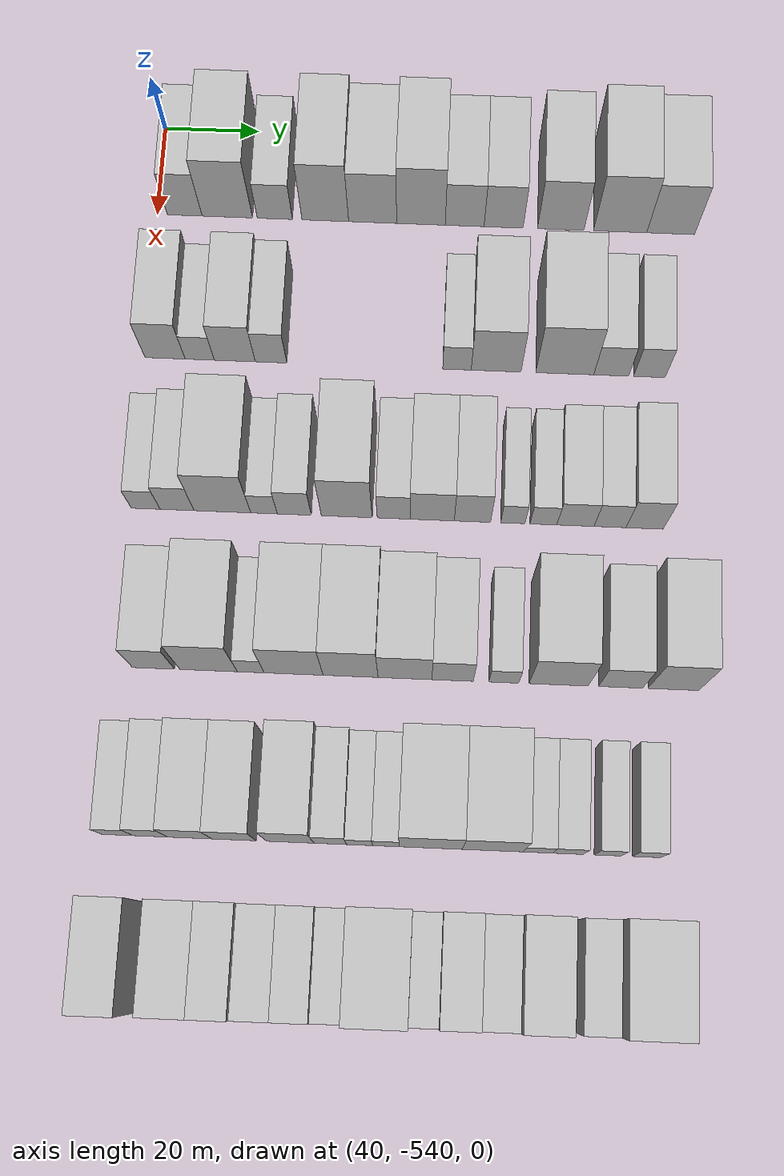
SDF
<sdf version="1.6">
 <world name="default">
  <model name="building_1">
   <static>1</static>
   <pose>50.0000 -534.3650 0 0.000000 0.000000 0.000000</pose>
   <link name="link">
    <pose>0 0 9.00 0 0 0</pose>
    <collision name="collision"><geometry><box><size>20.0000 7.2701 18.0000</size></box></geometry></collision>
    <visual name="visual">
     <cast_shadows>0</cast_shadows>
     <geometry><box><size>20.0000 7.2701 18.0000</size></box></geometry>
     <material>
      <script>
       <uri>model://HANNAS_wall/materials/scripts</uri>
       <uri>model://HANNAS_wall/materials/textures</uri>
       <name>vrc/HANNAS_wall</name>
      </script>
     </material>
    </visual>
   </link>
  </model>
  <model name="building_2">
   <static>1</static>
   <pose>50.0000 -525.4408 0 0.000000 0.000000 0.000000</pose>
   <link name="link">
    <pose>0 0 12.00 0 0 0</pose>
    <collision name="collision"><geometry><box><size>20.0000 10.5782 24.0000</size></box></geometry></collision>
    <visual name="visual">
     <cast_shadows>0</cast_shadows>
     <geometry><box><size>20.0000 10.5782 24.0000</size></box></geometry>
     <material>
      <script>
       <uri>model://HANNAS_wall/materials/scripts</uri>
       <uri>model://HANNAS_wall/materials/textures</uri>
       <name>vrc/HANNAS_wall</name>
      </script>
     </material>
    </visual>
   </link>
  </model>
  <model name="building_3">
   <static>1</static>
   <pose>50.0000 -515.4774 0 0.000000 0.000000 0.000000</pose>
   <link name="link">
    <pose>0 0 7.50 0 0 0</pose>
    <collision name="collision"><geometry><box><size>20.0000 7.3486 15.0000</size></box></geometry></collision>
    <visual name="visual">
     <cast_shadows>0</cast_shadows>
     <geometry><box><size>20.0000 7.3486 15.0000</size></box></geometry>
     <material>
      <script>
       <uri>model://HANNAS_wall/materials/scripts</uri>
       <uri>model://HANNAS_wall/materials/textures</uri>
       <name>vrc/HANNAS_wall</name>
      </script>
     </material>
    </visual>
   </link>
  </model>
  <model name="building_4">
   <static>1</static>
   <pose>50.0000 -504.9186 0 0.000000 0.000000 0.000000</pose>
   <link name="link">
    <pose>0 0 12.00 0 0 0</pose>
    <collision name="collision"><geometry><box><size>20.0000 9.7689 24.0000</size></box></geometry></collision>
    <visual name="visual">
     <cast_shadows>0</cast_shadows>
     <geometry><box><size>20.0000 9.7689 24.0000</size></box></geometry>
     <material>
      <script>
       <uri>model://HANNAS_wall/materials/scripts</uri>
       <uri>model://HANNAS_wall/materials/textures</uri>
       <name>vrc/HANNAS_wall</name>
      </script>
     </material>
    </visual>
   </link>
  </model>
  <model name="building_5">
   <static>1</static>
   <pose>50.0000 -495.0016 0 0.000000 0.000000 0.000000</pose>
   <link name="link">
    <pose>0 0 10.50 0 0 0</pose>
    <collision name="collision"><geometry><box><size>20.0000 10.0650 21.0000</size></box></geometry></collision>
    <visual name="visual">
     <cast_shadows>0</cast_shadows>
     <geometry><box><size>20.0000 10.0650 21.0000</size></box></geometry>
     <material>
      <script>
       <uri>model://HANNAS_wall/materials/scripts</uri>
       <uri>model://HANNAS_wall/materials/textures</uri>
       <name>vrc/HANNAS_wall</name>
      </script>
     </material>
    </visual>
   </link>
  </model>
  <model name="building_6">
   <static>1</static>
   <pose>50.0000 -484.9039 0 0.000000 0.000000 0.000000</pose>
   <link name="link">
    <pose>0 0 12.00 0 0 0</pose>
    <collision name="collision"><geometry><box><size>20.0000 10.1304 24.0000</size></box></geometry></collision>
    <visual name="visual">
     <cast_shadows>0</cast_shadows>
     <geometry><box><size>20.0000 10.1304 24.0000</size></box></geometry>
     <material>
      <script>
       <uri>model://HANNAS_wall/materials/scripts</uri>
       <uri>model://HANNAS_wall/materials/textures</uri>
       <name>vrc/HANNAS_wall</name>
      </script>
     </material>
    </visual>
   </link>
  </model>
  <model name="building_7">
   <static>1</static>
   <pose>50.0000 -475.7787 0 0.000000 0.000000 0.000000</pose>
   <link name="link">
    <pose>0 0 9.00 0 0 0</pose>
    <collision name="collision"><geometry><box><size>20.0000 8.1200 18.0000</size></box></geometry></collision>
    <visual name="visual">
     <cast_shadows>0</cast_shadows>
     <geometry><box><size>20.0000 8.1200 18.0000</size></box></geometry>
     <material>
      <script>
       <uri>model://HANNAS_wall/materials/scripts</uri>
       <uri>model://HANNAS_wall/materials/textures</uri>
       <name>vrc/HANNAS_wall</name>
      </script>
     </material>
    </visual>
   </link>
  </model>
  <model name="building_8">
   <static>1</static>
   <pose>50.0000 -467.6427 0 0.000000 0.000000 0.000000</pose>
   <link name="link">
    <pose>0 0 9.00 0 0 0</pose>
    <collision name="collision"><geometry><box><size>20.0000 8.1521 18.0000</size></box></geometry></collision>
    <visual name="visual">
     <cast_shadows>0</cast_shadows>
     <geometry><box><size>20.0000 8.1521 18.0000</size></box></geometry>
     <material>
      <script>
       <uri>model://HANNAS_wall/materials/scripts</uri>
       <uri>model://HANNAS_wall/materials/textures</uri>
       <name>vrc/HANNAS_wall</name>
      </script>
     </material>
    </visual>
   </link>
  </model>
  <model name="building_9">
   <static>1</static>
   <pose>50.0000 -455.7142 0 0.000000 0.000000 0.000000</pose>
   <link name="link">
    <pose>0 0 10.50 0 0 0</pose>
    <collision name="collision"><geometry><box><size>20.0000 9.7048 21.0000</size></box></geometry></collision>
    <visual name="visual">
     <cast_shadows>0</cast_shadows>
     <geometry><box><size>20.0000 9.7048 21.0000</size></box></geometry>
     <material>
      <script>
       <uri>model://HANNAS_wall/materials/scripts</uri>
       <uri>model://HANNAS_wall/materials/textures</uri>
       <name>vrc/HANNAS_wall</name>
      </script>
     </material>
    </visual>
   </link>
  </model>
  <model name="building_10">
   <static>1</static>
   <pose>50.0000 -443.3077 0 0.000000 0.000000 0.000000</pose>
   <link name="link">
    <pose>0 0 12.00 0 0 0</pose>
    <collision name="collision"><geometry><box><size>20.0000 11.1083 24.0000</size></box></geometry></collision>
    <visual name="visual">
     <cast_shadows>0</cast_shadows>
     <geometry><box><size>20.0000 11.1083 24.0000</size></box></geometry>
     <material>
      <script>
       <uri>model://HANNAS_wall/materials/scripts</uri>
       <uri>model://HANNAS_wall/materials/textures</uri>
       <name>vrc/HANNAS_wall</name>
      </script>
     </material>
    </visual>
   </link>
  </model>
  <model name="building_11">
   <static>1</static>
   <pose>50.0000 -432.7694 0 0.000000 0.000000 0.000000</pose>
   <link name="link">
    <pose>0 0 10.50 0 0 0</pose>
    <collision name="collision"><geometry><box><size>20.0000 9.9684 21.0000</size></box></geometry></collision>
    <visual name="visual">
     <cast_shadows>0</cast_shadows>
     <geometry><box><size>20.0000 9.9684 21.0000</size></box></geometry>
     <material>
      <script>
       <uri>model://HANNAS_wall/materials/scripts</uri>
       <uri>model://HANNAS_wall/materials/textures</uri>
       <name>vrc/HANNAS_wall</name>
      </script>
     </material>
    </visual>
   </link>
  </model>
  <model name="building_115">
   <static>1</static>
   <pose>82.0000 -535.8991 0 0.000000 0.000000 0.000000</pose>
   <link name="link">
    <pose>0 0 9.00 0 0 0</pose>
    <collision name="collision"><geometry><box><size>20.0000 8.2019 18.0000</size></box></geometry></collision>
    <visual name="visual">
     <cast_shadows>0</cast_shadows>
     <geometry><box><size>20.0000 8.2019 18.0000</size></box></geometry>
     <material>
      <script>
       <uri>model://HANNAS_wall/materials/scripts</uri>
       <uri>model://HANNAS_wall/materials/textures</uri>
       <name>vrc/HANNAS_wall</name>
      </script>
     </material>
    </visual>
   </link>
  </model>
  <model name="building_116">
   <static>1</static>
   <pose>82.0000 -528.8183 0 0.000000 0.000000 0.000000</pose>
   <link name="link">
    <pose>0 0 6.00 0 0 0</pose>
    <collision name="collision"><geometry><box><size>20.0000 5.9597 12.0000</size></box></geometry></collision>
    <visual name="visual">
     <cast_shadows>0</cast_shadows>
     <geometry><box><size>20.0000 5.9597 12.0000</size></box></geometry>
     <material>
      <script>
       <uri>model://HANNAS_wall/materials/scripts</uri>
       <uri>model://HANNAS_wall/materials/textures</uri>
       <name>vrc/HANNAS_wall</name>
      </script>
     </material>
    </visual>
   </link>
  </model>
  <model name="building_117">
   <static>1</static>
   <pose>82.0000 -521.6421 0 0.000000 0.000000 0.000000</pose>
   <link name="link">
    <pose>0 0 9.00 0 0 0</pose>
    <collision name="collision"><geometry><box><size>20.0000 8.3926 18.0000</size></box></geometry></collision>
    <visual name="visual">
     <cast_shadows>0</cast_shadows>
     <geometry><box><size>20.0000 8.3926 18.0000</size></box></geometry>
     <material>
      <script>
       <uri>model://HANNAS_wall/materials/scripts</uri>
       <uri>model://HANNAS_wall/materials/textures</uri>
       <name>vrc/HANNAS_wall</name>
      </script>
     </material>
    </visual>
   </link>
  </model>
  <model name="building_118">
   <static>1</static>
   <pose>82.0000 -514.2225 0 0.000000 0.000000 0.000000</pose>
   <link name="link">
    <pose>0 0 7.50 0 0 0</pose>
    <collision name="collision"><geometry><box><size>20.0000 6.4465 15.0000</size></box></geometry></collision>
    <visual name="visual">
     <cast_shadows>0</cast_shadows>
     <geometry><box><size>20.0000 6.4465 15.0000</size></box></geometry>
     <material>
      <script>
       <uri>model://HANNAS_wall/materials/scripts</uri>
       <uri>model://HANNAS_wall/materials/textures</uri>
       <name>vrc/HANNAS_wall</name>
      </script>
     </material>
    </visual>
   </link>
  </model>
  <model name="building_119">
   <static>1</static>
   <pose>82.0000 -476.3020 0 0.000000 0.000000 0.000000</pose>
   <link name="link">
    <pose>0 0 6.00 0 0 0</pose>
    <collision name="collision"><geometry><box><size>20.0000 5.7982 12.0000</size></box></geometry></collision>
    <visual name="visual">
     <cast_shadows>0</cast_shadows>
     <geometry><box><size>20.0000 5.7982 12.0000</size></box></geometry>
     <material>
      <script>
       <uri>model://HANNAS_wall/materials/scripts</uri>
       <uri>model://HANNAS_wall/materials/textures</uri>
       <name>vrc/HANNAS_wall</name>
      </script>
     </material>
    </visual>
   </link>
  </model>
  <model name="building_120">
   <static>1</static>
   <pose>82.0000 -468.3266 0 0.000000 0.000000 0.000000</pose>
   <link name="link">
    <pose>0 0 10.50 0 0 0</pose>
    <collision name="collision"><geometry><box><size>20.0000 10.1526 21.0000</size></box></geometry></collision>
    <visual name="visual">
     <cast_shadows>0</cast_shadows>
     <geometry><box><size>20.0000 10.1526 21.0000</size></box></geometry>
     <material>
      <script>
       <uri>model://HANNAS_wall/materials/scripts</uri>
       <uri>model://HANNAS_wall/materials/textures</uri>
       <name>vrc/HANNAS_wall</name>
      </script>
     </material>
    </visual>
   </link>
  </model>
  <model name="building_121">
   <static>1</static>
   <pose>82.0000 -454.3508 0 0.000000 0.000000 0.000000</pose>
   <link name="link">
    <pose>0 0 12.00 0 0 0</pose>
    <collision name="collision"><geometry><box><size>20.0000 11.7990 24.0000</size></box></geometry></collision>
    <visual name="visual">
     <cast_shadows>0</cast_shadows>
     <geometry><box><size>20.0000 11.7990 24.0000</size></box></geometry>
     <material>
      <script>
       <uri>model://HANNAS_wall/materials/scripts</uri>
       <uri>model://HANNAS_wall/materials/textures</uri>
       <name>vrc/HANNAS_wall</name>
      </script>
     </material>
    </visual>
   </link>
  </model>
  <model name="building_122">
   <static>1</static>
   <pose>82.0000 -444.8968 0 0.000000 0.000000 0.000000</pose>
   <link name="link">
    <pose>0 0 7.50 0 0 0</pose>
    <collision name="collision"><geometry><box><size>20.0000 7.1091 15.0000</size></box></geometry></collision>
    <visual name="visual">
     <cast_shadows>0</cast_shadows>
     <geometry><box><size>20.0000 7.1091 15.0000</size></box></geometry>
     <material>
      <script>
       <uri>model://HANNAS_wall/materials/scripts</uri>
       <uri>model://HANNAS_wall/materials/textures</uri>
       <name>vrc/HANNAS_wall</name>
      </script>
     </material>
    </visual>
   </link>
  </model>
  <model name="building_123">
   <static>1</static>
   <pose>82.0000 -437.1316 0 0.000000 0.000000 0.000000</pose>
   <link name="link">
    <pose>0 0 7.50 0 0 0</pose>
    <collision name="collision"><geometry><box><size>20.0000 6.4212 15.0000</size></box></geometry></collision>
    <visual name="visual">
     <cast_shadows>0</cast_shadows>
     <geometry><box><size>20.0000 6.4212 15.0000</size></box></geometry>
     <material>
      <script>
       <uri>model://HANNAS_wall/materials/scripts</uri>
       <uri>model://HANNAS_wall/materials/textures</uri>
       <name>vrc/HANNAS_wall</name>
      </script>
     </material>
    </visual>
   </link>
  </model>
  <model name="building_236">
   <static>1</static>
   <pose>114.0000 -537.1364 0 0.000000 0.000000 0.000000</pose>
   <link name="link">
    <pose>0 0 6.00 0 0 0</pose>
    <collision name="collision"><geometry><box><size>20.0000 5.7272 12.0000</size></box></geometry></collision>
    <visual name="visual">
     <cast_shadows>0</cast_shadows>
     <geometry><box><size>20.0000 5.7272 12.0000</size></box></geometry>
     <material>
      <script>
       <uri>model://HANNAS_wall/materials/scripts</uri>
       <uri>model://HANNAS_wall/materials/textures</uri>
       <name>vrc/HANNAS_wall</name>
      </script>
     </material>
    </visual>
   </link>
  </model>
  <model name="building_237">
   <static>1</static>
   <pose>114.0000 -530.8759 0 0.000000 0.000000 0.000000</pose>
   <link name="link">
    <pose>0 0 7.50 0 0 0</pose>
    <collision name="collision"><geometry><box><size>20.0000 6.7938 15.0000</size></box></geometry></collision>
    <visual name="visual">
     <cast_shadows>0</cast_shadows>
     <geometry><box><size>20.0000 6.7938 15.0000</size></box></geometry>
     <material>
      <script>
       <uri>model://HANNAS_wall/materials/scripts</uri>
       <uri>model://HANNAS_wall/materials/textures</uri>
       <name>vrc/HANNAS_wall</name>
      </script>
     </material>
    </visual>
   </link>
  </model>
  <model name="building_238">
   <static>1</static>
   <pose>114.0000 -521.8403 0 0.000000 0.000000 0.000000</pose>
   <link name="link">
    <pose>0 0 12.00 0 0 0</pose>
    <collision name="collision"><geometry><box><size>20.0000 11.2775 24.0000</size></box></geometry></collision>
    <visual name="visual">
     <cast_shadows>0</cast_shadows>
     <geometry><box><size>20.0000 11.2775 24.0000</size></box></geometry>
     <material>
      <script>
       <uri>model://HANNAS_wall/materials/scripts</uri>
       <uri>model://HANNAS_wall/materials/textures</uri>
       <name>vrc/HANNAS_wall</name>
      </script>
     </material>
    </visual>
   </link>
  </model>
  <model name="building_239">
   <static>1</static>
   <pose>114.0000 -513.5659 0 0.000000 0.000000 0.000000</pose>
   <link name="link">
    <pose>0 0 6.00 0 0 0</pose>
    <collision name="collision"><geometry><box><size>20.0000 5.2712 12.0000</size></box></geometry></collision>
    <visual name="visual">
     <cast_shadows>0</cast_shadows>
     <geometry><box><size>20.0000 5.2712 12.0000</size></box></geometry>
     <material>
      <script>
       <uri>model://HANNAS_wall/materials/scripts</uri>
       <uri>model://HANNAS_wall/materials/textures</uri>
       <name>vrc/HANNAS_wall</name>
      </script>
     </material>
    </visual>
   </link>
  </model>
  <model name="building_240">
   <static>1</static>
   <pose>114.0000 -507.5516 0 0.000000 0.000000 0.000000</pose>
   <link name="link">
    <pose>0 0 7.50 0 0 0</pose>
    <collision name="collision"><geometry><box><size>20.0000 6.7574 15.0000</size></box></geometry></collision>
    <visual name="visual">
     <cast_shadows>0</cast_shadows>
     <geometry><box><size>20.0000 6.7574 15.0000</size></box></geometry>
     <material>
      <script>
       <uri>model://HANNAS_wall/materials/scripts</uri>
       <uri>model://HANNAS_wall/materials/textures</uri>
       <name>vrc/HANNAS_wall</name>
      </script>
     </material>
    </visual>
   </link>
  </model>
  <model name="building_241">
   <static>1</static>
   <pose>114.0000 -497.1124 0 0.000000 0.000000 0.000000</pose>
   <link name="link">
    <pose>0 0 12.00 0 0 0</pose>
    <collision name="collision"><geometry><box><size>20.0000 10.1209 24.0000</size></box></geometry></collision>
    <visual name="visual">
     <cast_shadows>0</cast_shadows>
     <geometry><box><size>20.0000 10.1209 24.0000</size></box></geometry>
     <material>
      <script>
       <uri>model://HANNAS_wall/materials/scripts</uri>
       <uri>model://HANNAS_wall/materials/textures</uri>
       <name>vrc/HANNAS_wall</name>
      </script>
     </material>
    </visual>
   </link>
  </model>
  <model name="building_242">
   <static>1</static>
   <pose>114.0000 -487.7750 0 0.000000 0.000000 0.000000</pose>
   <link name="link">
    <pose>0 0 7.50 0 0 0</pose>
    <collision name="collision"><geometry><box><size>20.0000 6.5539 15.0000</size></box></geometry></collision>
    <visual name="visual">
     <cast_shadows>0</cast_shadows>
     <geometry><box><size>20.0000 6.5539 15.0000</size></box></geometry>
     <material>
      <script>
       <uri>model://HANNAS_wall/materials/scripts</uri>
       <uri>model://HANNAS_wall/materials/textures</uri>
       <name>vrc/HANNAS_wall</name>
      </script>
     </material>
    </visual>
   </link>
  </model>
  <model name="building_243">
   <static>1</static>
   <pose>114.0000 -480.1305 0 0.000000 0.000000 0.000000</pose>
   <link name="link">
    <pose>0 0 9.00 0 0 0</pose>
    <collision name="collision"><geometry><box><size>20.0000 8.7351 18.0000</size></box></geometry></collision>
    <visual name="visual">
     <cast_shadows>0</cast_shadows>
     <geometry><box><size>20.0000 8.7351 18.0000</size></box></geometry>
     <material>
      <script>
       <uri>model://HANNAS_wall/materials/scripts</uri>
       <uri>model://HANNAS_wall/materials/textures</uri>
       <name>vrc/HANNAS_wall</name>
      </script>
     </material>
    </visual>
   </link>
  </model>
  <model name="building_244">
   <static>1</static>
   <pose>114.0000 -472.1564 0 0.000000 0.000000 0.000000</pose>
   <link name="link">
    <pose>0 0 9.00 0 0 0</pose>
    <collision name="collision"><geometry><box><size>20.0000 7.2130 18.0000</size></box></geometry></collision>
    <visual name="visual">
     <cast_shadows>0</cast_shadows>
     <geometry><box><size>20.0000 7.2130 18.0000</size></box></geometry>
     <material>
      <script>
       <uri>model://HANNAS_wall/materials/scripts</uri>
       <uri>model://HANNAS_wall/materials/textures</uri>
       <name>vrc/HANNAS_wall</name>
      </script>
     </material>
    </visual>
   </link>
  </model>
  <model name="building_245">
   <static>1</static>
   <pose>114.0000 -464.1403 0 0.000000 0.000000 0.000000</pose>
   <link name="link">
    <pose>0 0 6.00 0 0 0</pose>
    <collision name="collision"><geometry><box><size>20.0000 4.8192 12.0000</size></box></geometry></collision>
    <visual name="visual">
     <cast_shadows>0</cast_shadows>
     <geometry><box><size>20.0000 4.8192 12.0000</size></box></geometry>
     <material>
      <script>
       <uri>model://HANNAS_wall/materials/scripts</uri>
       <uri>model://HANNAS_wall/materials/textures</uri>
       <name>vrc/HANNAS_wall</name>
      </script>
     </material>
    </visual>
   </link>
  </model>
  <model name="building_246">
   <static>1</static>
   <pose>114.0000 -458.0629 0 0.000000 0.000000 0.000000</pose>
   <link name="link">
    <pose>0 0 6.00 0 0 0</pose>
    <collision name="collision"><geometry><box><size>20.0000 5.3356 12.0000</size></box></geometry></collision>
    <visual name="visual">
     <cast_shadows>0</cast_shadows>
     <geometry><box><size>20.0000 5.3356 12.0000</size></box></geometry>
     <material>
      <script>
       <uri>model://HANNAS_wall/materials/scripts</uri>
       <uri>model://HANNAS_wall/materials/textures</uri>
       <name>vrc/HANNAS_wall</name>
      </script>
     </material>
    </visual>
   </link>
  </model>
  <model name="building_247">
   <static>1</static>
   <pose>114.0000 -451.7105 0 0.000000 0.000000 0.000000</pose>
   <link name="link">
    <pose>0 0 7.50 0 0 0</pose>
    <collision name="collision"><geometry><box><size>20.0000 7.3691 15.0000</size></box></geometry></collision>
    <visual name="visual">
     <cast_shadows>0</cast_shadows>
     <geometry><box><size>20.0000 7.3691 15.0000</size></box></geometry>
     <material>
      <script>
       <uri>model://HANNAS_wall/materials/scripts</uri>
       <uri>model://HANNAS_wall/materials/textures</uri>
       <name>vrc/HANNAS_wall</name>
      </script>
     </material>
    </visual>
   </link>
  </model>
  <model name="building_248">
   <static>1</static>
   <pose>114.0000 -444.8464 0 0.000000 0.000000 0.000000</pose>
   <link name="link">
    <pose>0 0 7.50 0 0 0</pose>
    <collision name="collision"><geometry><box><size>20.0000 6.3591 15.0000</size></box></geometry></collision>
    <visual name="visual">
     <cast_shadows>0</cast_shadows>
     <geometry><box><size>20.0000 6.3591 15.0000</size></box></geometry>
     <material>
      <script>
       <uri>model://HANNAS_wall/materials/scripts</uri>
       <uri>model://HANNAS_wall/materials/textures</uri>
       <name>vrc/HANNAS_wall</name>
      </script>
     </material>
    </visual>
   </link>
  </model>
  <model name="building_249">
   <static>1</static>
   <pose>114.0000 -437.9886 0 0.000000 0.000000 0.000000</pose>
   <link name="link">
    <pose>0 0 9.00 0 0 0</pose>
    <collision name="collision"><geometry><box><size>20.0000 7.3566 18.0000</size></box></geometry></collision>
    <visual name="visual">
     <cast_shadows>0</cast_shadows>
     <geometry><box><size>20.0000 7.3566 18.0000</size></box></geometry>
     <material>
      <script>
       <uri>model://HANNAS_wall/materials/scripts</uri>
       <uri>model://HANNAS_wall/materials/textures</uri>
       <name>vrc/HANNAS_wall</name>
      </script>
     </material>
    </visual>
   </link>
  </model>
  <model name="building_359">
   <static>1</static>
   <pose>146.0000 -532.9067 0 0.000000 0.000000 0.000000</pose>
   <link name="link">
    <pose>0 0 9.00 0 0 0</pose>
    <collision name="collision"><geometry><box><size>20.0000 8.1867 18.0000</size></box></geometry></collision>
    <visual name="visual">
     <cast_shadows>0</cast_shadows>
     <geometry><box><size>20.0000 8.1867 18.0000</size></box></geometry>
     <material>
      <script>
       <uri>model://HANNAS_wall/materials/scripts</uri>
       <uri>model://HANNAS_wall/materials/textures</uri>
       <name>vrc/HANNAS_wall</name>
      </script>
     </material>
    </visual>
   </link>
  </model>
  <model name="building_360">
   <static>1</static>
   <pose>146.0000 -522.2283 0 0.000000 0.000000 0.000000</pose>
   <link name="link">
    <pose>0 0 12.00 0 0 0</pose>
    <collision name="collision"><geometry><box><size>20.0000 11.1699 24.0000</size></box></geometry></collision>
    <visual name="visual">
     <cast_shadows>0</cast_shadows>
     <geometry><box><size>20.0000 11.1699 24.0000</size></box></geometry>
     <material>
      <script>
       <uri>model://HANNAS_wall/materials/scripts</uri>
       <uri>model://HANNAS_wall/materials/textures</uri>
       <name>vrc/HANNAS_wall</name>
      </script>
     </material>
    </visual>
   </link>
  </model>
  <model name="building_361">
   <static>1</static>
   <pose>146.0000 -514.0429 0 0.000000 0.000000 0.000000</pose>
   <link name="link">
    <pose>0 0 6.00 0 0 0</pose>
    <collision name="collision"><geometry><box><size>20.0000 5.2009 12.0000</size></box></geometry></collision>
    <visual name="visual">
     <cast_shadows>0</cast_shadows>
     <geometry><box><size>20.0000 5.2009 12.0000</size></box></geometry>
     <material>
      <script>
       <uri>model://HANNAS_wall/materials/scripts</uri>
       <uri>model://HANNAS_wall/materials/textures</uri>
       <name>vrc/HANNAS_wall</name>
      </script>
     </material>
    </visual>
   </link>
  </model>
  <model name="building_362">
   <static>1</static>
   <pose>146.0000 -505.7378 0 0.000000 0.000000 0.000000</pose>
   <link name="link">
    <pose>0 0 12.00 0 0 0</pose>
    <collision name="collision"><geometry><box><size>20.0000 11.4094 24.0000</size></box></geometry></collision>
    <visual name="visual">
     <cast_shadows>0</cast_shadows>
     <geometry><box><size>20.0000 11.4094 24.0000</size></box></geometry>
     <material>
      <script>
       <uri>model://HANNAS_wall/materials/scripts</uri>
       <uri>model://HANNAS_wall/materials/textures</uri>
       <name>vrc/HANNAS_wall</name>
      </script>
     </material>
    </visual>
   </link>
  </model>
  <model name="building_363">
   <static>1</static>
   <pose>146.0000 -494.7215 0 0.000000 0.000000 0.000000</pose>
   <link name="link">
    <pose>0 0 12.00 0 0 0</pose>
    <collision name="collision"><geometry><box><size>20.0000 10.6232 24.0000</size></box></geometry></collision>
    <visual name="visual">
     <cast_shadows>0</cast_shadows>
     <geometry><box><size>20.0000 10.6232 24.0000</size></box></geometry>
     <material>
      <script>
       <uri>model://HANNAS_wall/materials/scripts</uri>
       <uri>model://HANNAS_wall/materials/textures</uri>
       <name>vrc/HANNAS_wall</name>
      </script>
     </material>
    </visual>
   </link>
  </model>
  <model name="building_364">
   <static>1</static>
   <pose>146.0000 -484.2100 0 0.000000 0.000000 0.000000</pose>
   <link name="link">
    <pose>0 0 10.50 0 0 0</pose>
    <collision name="collision"><geometry><box><size>20.0000 10.3998 21.0000</size></box></geometry></collision>
    <visual name="visual">
     <cast_shadows>0</cast_shadows>
     <geometry><box><size>20.0000 10.3998 21.0000</size></box></geometry>
     <material>
      <script>
       <uri>model://HANNAS_wall/materials/scripts</uri>
       <uri>model://HANNAS_wall/materials/textures</uri>
       <name>vrc/HANNAS_wall</name>
      </script>
     </material>
    </visual>
   </link>
  </model>
  <model name="building_365">
   <static>1</static>
   <pose>146.0000 -474.9975 0 0.000000 0.000000 0.000000</pose>
   <link name="link">
    <pose>0 0 9.00 0 0 0</pose>
    <collision name="collision"><geometry><box><size>20.0000 8.0251 18.0000</size></box></geometry></collision>
    <visual name="visual">
     <cast_shadows>0</cast_shadows>
     <geometry><box><size>20.0000 8.0251 18.0000</size></box></geometry>
     <material>
      <script>
       <uri>model://HANNAS_wall/materials/scripts</uri>
       <uri>model://HANNAS_wall/materials/textures</uri>
       <name>vrc/HANNAS_wall</name>
      </script>
     </material>
    </visual>
   </link>
  </model>
  <model name="building_366">
   <static>1</static>
   <pose>146.0000 -465.1001 0 0.000000 0.000000 0.000000</pose>
   <link name="link">
    <pose>0 0 6.00 0 0 0</pose>
    <collision name="collision"><geometry><box><size>20.0000 5.7696 12.0000</size></box></geometry></collision>
    <visual name="visual">
     <cast_shadows>0</cast_shadows>
     <geometry><box><size>20.0000 5.7696 12.0000</size></box></geometry>
     <material>
      <script>
       <uri>model://HANNAS_wall/materials/scripts</uri>
       <uri>model://HANNAS_wall/materials/textures</uri>
       <name>vrc/HANNAS_wall</name>
      </script>
     </material>
    </visual>
   </link>
  </model>
  <model name="building_367">
   <static>1</static>
   <pose>146.0000 -454.4945 0 0.000000 0.000000 0.000000</pose>
   <link name="link">
    <pose>0 0 12.00 0 0 0</pose>
    <collision name="collision"><geometry><box><size>20.0000 11.4417 24.0000</size></box></geometry></collision>
    <visual name="visual">
     <cast_shadows>0</cast_shadows>
     <geometry><box><size>20.0000 11.4417 24.0000</size></box></geometry>
     <material>
      <script>
       <uri>model://HANNAS_wall/materials/scripts</uri>
       <uri>model://HANNAS_wall/materials/textures</uri>
       <name>vrc/HANNAS_wall</name>
      </script>
     </material>
    </visual>
   </link>
  </model>
  <model name="building_368">
   <static>1</static>
   <pose>146.0000 -442.5133 0 0.000000 0.000000 0.000000</pose>
   <link name="link">
    <pose>0 0 9.00 0 0 0</pose>
    <collision name="collision"><geometry><box><size>20.0000 8.5207 18.0000</size></box></geometry></collision>
    <visual name="visual">
     <cast_shadows>0</cast_shadows>
     <geometry><box><size>20.0000 8.5207 18.0000</size></box></geometry>
     <material>
      <script>
       <uri>model://HANNAS_wall/materials/scripts</uri>
       <uri>model://HANNAS_wall/materials/textures</uri>
       <name>vrc/HANNAS_wall</name>
      </script>
     </material>
    </visual>
   </link>
  </model>
  <model name="building_369">
   <static>1</static>
   <pose>146.0000 -432.3259 0 0.000000 0.000000 0.000000</pose>
   <link name="link">
    <pose>0 0 12.00 0 0 0</pose>
    <collision name="collision"><geometry><box><size>20.0000 9.8542 24.0000</size></box></geometry></collision>
    <visual name="visual">
     <cast_shadows>0</cast_shadows>
     <geometry><box><size>20.0000 9.8542 24.0000</size></box></geometry>
     <material>
      <script>
       <uri>model://HANNAS_wall/materials/scripts</uri>
       <uri>model://HANNAS_wall/materials/textures</uri>
       <name>vrc/HANNAS_wall</name>
      </script>
     </material>
    </visual>
   </link>
  </model>
  <model name="building_477">
   <static>1</static>
   <pose>178.0000 -537.0088 0 0.000000 0.000000 0.000000</pose>
   <link name="link">
    <pose>0 0 6.00 0 0 0</pose>
    <collision name="collision"><geometry><box><size>20.0000 5.9823 12.0000</size></box></geometry></collision>
    <visual name="visual">
     <cast_shadows>0</cast_shadows>
     <geometry><box><size>20.0000 5.9823 12.0000</size></box></geometry>
     <material>
      <script>
       <uri>model://HANNAS_wall/materials/scripts</uri>
       <uri>model://HANNAS_wall/materials/textures</uri>
       <name>vrc/HANNAS_wall</name>
      </script>
     </material>
    </visual>
   </link>
  </model>
  <model name="building_478">
   <static>1</static>
   <pose>178.0000 -530.7608 0 0.000000 0.000000 0.000000</pose>
   <link name="link">
    <pose>0 0 7.50 0 0 0</pose>
    <collision name="collision"><geometry><box><size>20.0000 6.5137 15.0000</size></box></geometry></collision>
    <visual name="visual">
     <cast_shadows>0</cast_shadows>
     <geometry><box><size>20.0000 6.5137 15.0000</size></box></geometry>
     <material>
      <script>
       <uri>model://HANNAS_wall/materials/scripts</uri>
       <uri>model://HANNAS_wall/materials/textures</uri>
       <name>vrc/HANNAS_wall</name>
      </script>
     </material>
    </visual>
   </link>
  </model>
  <model name="building_479">
   <static>1</static>
   <pose>178.0000 -523.3562 0 0.000000 0.000000 0.000000</pose>
   <link name="link">
    <pose>0 0 9.00 0 0 0</pose>
    <collision name="collision"><geometry><box><size>20.0000 8.2956 18.0000</size></box></geometry></collision>
    <visual name="visual">
     <cast_shadows>0</cast_shadows>
     <geometry><box><size>20.0000 8.2956 18.0000</size></box></geometry>
     <material>
      <script>
       <uri>model://HANNAS_wall/materials/scripts</uri>
       <uri>model://HANNAS_wall/materials/textures</uri>
       <name>vrc/HANNAS_wall</name>
      </script>
     </material>
    </visual>
   </link>
  </model>
  <model name="building_480">
   <static>1</static>
   <pose>178.0000 -515.0430 0 0.000000 0.000000 0.000000</pose>
   <link name="link">
    <pose>0 0 9.00 0 0 0</pose>
    <collision name="collision"><geometry><box><size>20.0000 8.3307 18.0000</size></box></geometry></collision>
    <visual name="visual">
     <cast_shadows>0</cast_shadows>
     <geometry><box><size>20.0000 8.3307 18.0000</size></box></geometry>
     <material>
      <script>
       <uri>model://HANNAS_wall/materials/scripts</uri>
       <uri>model://HANNAS_wall/materials/textures</uri>
       <name>vrc/HANNAS_wall</name>
      </script>
     </material>
    </visual>
   </link>
  </model>
  <model name="building_481">
   <static>1</static>
   <pose>178.0000 -504.3970 0 0.000000 0.000000 0.000000</pose>
   <link name="link">
    <pose>0 0 10.50 0 0 0</pose>
    <collision name="collision"><geometry><box><size>20.0000 8.9613 21.0000</size></box></geometry></collision>
    <visual name="visual">
     <cast_shadows>0</cast_shadows>
     <geometry><box><size>20.0000 8.9613 21.0000</size></box></geometry>
     <material>
      <script>
       <uri>model://HANNAS_wall/materials/scripts</uri>
       <uri>model://HANNAS_wall/materials/textures</uri>
       <name>vrc/HANNAS_wall</name>
      </script>
     </material>
    </visual>
   </link>
  </model>
  <model name="building_482">
   <static>1</static>
   <pose>178.0000 -496.8606 0 0.000000 0.000000 0.000000</pose>
   <link name="link">
    <pose>0 0 7.50 0 0 0</pose>
    <collision name="collision"><geometry><box><size>20.0000 6.1114 15.0000</size></box></geometry></collision>
    <visual name="visual">
     <cast_shadows>0</cast_shadows>
     <geometry><box><size>20.0000 6.1114 15.0000</size></box></geometry>
     <material>
      <script>
       <uri>model://HANNAS_wall/materials/scripts</uri>
       <uri>model://HANNAS_wall/materials/textures</uri>
       <name>vrc/HANNAS_wall</name>
      </script>
     </material>
    </visual>
   </link>
  </model>
  <model name="building_483">
   <static>1</static>
   <pose>178.0000 -491.3488 0 0.000000 0.000000 0.000000</pose>
   <link name="link">
    <pose>0 0 6.00 0 0 0</pose>
    <collision name="collision"><geometry><box><size>20.0000 4.9122 12.0000</size></box></geometry></collision>
    <visual name="visual">
     <cast_shadows>0</cast_shadows>
     <geometry><box><size>20.0000 4.9122 12.0000</size></box></geometry>
     <material>
      <script>
       <uri>model://HANNAS_wall/materials/scripts</uri>
       <uri>model://HANNAS_wall/materials/textures</uri>
       <name>vrc/HANNAS_wall</name>
      </script>
     </material>
    </visual>
   </link>
  </model>
  <model name="building_484">
   <static>1</static>
   <pose>178.0000 -486.3871 0 0.000000 0.000000 0.000000</pose>
   <link name="link">
    <pose>0 0 6.00 0 0 0</pose>
    <collision name="collision"><geometry><box><size>20.0000 5.0113 12.0000</size></box></geometry></collision>
    <visual name="visual">
     <cast_shadows>0</cast_shadows>
     <geometry><box><size>20.0000 5.0113 12.0000</size></box></geometry>
     <material>
      <script>
       <uri>model://HANNAS_wall/materials/scripts</uri>
       <uri>model://HANNAS_wall/materials/textures</uri>
       <name>vrc/HANNAS_wall</name>
      </script>
     </material>
    </visual>
   </link>
  </model>
  <model name="building_485">
   <static>1</static>
   <pose>178.0000 -477.9782 0 0.000000 0.000000 0.000000</pose>
   <link name="link">
    <pose>0 0 12.00 0 0 0</pose>
    <collision name="collision"><geometry><box><size>20.0000 11.8065 24.0000</size></box></geometry></collision>
    <visual name="visual">
     <cast_shadows>0</cast_shadows>
     <geometry><box><size>20.0000 11.8065 24.0000</size></box></geometry>
     <material>
      <script>
       <uri>model://HANNAS_wall/materials/scripts</uri>
       <uri>model://HANNAS_wall/materials/textures</uri>
       <name>vrc/HANNAS_wall</name>
      </script>
     </material>
    </visual>
   </link>
  </model>
  <model name="building_486">
   <static>1</static>
   <pose>178.0000 -466.3658 0 0.000000 0.000000 0.000000</pose>
   <link name="link">
    <pose>0 0 12.00 0 0 0</pose>
    <collision name="collision"><geometry><box><size>20.0000 11.4182 24.0000</size></box></geometry></collision>
    <visual name="visual">
     <cast_shadows>0</cast_shadows>
     <geometry><box><size>20.0000 11.4182 24.0000</size></box></geometry>
     <material>
      <script>
       <uri>model://HANNAS_wall/materials/scripts</uri>
       <uri>model://HANNAS_wall/materials/textures</uri>
       <name>vrc/HANNAS_wall</name>
      </script>
     </material>
    </visual>
   </link>
  </model>
  <model name="building_487">
   <static>1</static>
   <pose>178.0000 -457.8713 0 0.000000 0.000000 0.000000</pose>
   <link name="link">
    <pose>0 0 6.00 0 0 0</pose>
    <collision name="collision"><geometry><box><size>20.0000 5.5708 12.0000</size></box></geometry></collision>
    <visual name="visual">
     <cast_shadows>0</cast_shadows>
     <geometry><box><size>20.0000 5.5708 12.0000</size></box></geometry>
     <material>
      <script>
       <uri>model://HANNAS_wall/materials/scripts</uri>
       <uri>model://HANNAS_wall/materials/textures</uri>
       <name>vrc/HANNAS_wall</name>
      </script>
     </material>
    </visual>
   </link>
  </model>
  <model name="building_488">
   <static>1</static>
   <pose>178.0000 -452.1812 0 0.000000 0.000000 0.000000</pose>
   <link name="link">
    <pose>0 0 6.00 0 0 0</pose>
    <collision name="collision"><geometry><box><size>20.0000 5.8095 12.0000</size></box></geometry></collision>
    <visual name="visual">
     <cast_shadows>0</cast_shadows>
     <geometry><box><size>20.0000 5.8095 12.0000</size></box></geometry>
     <material>
      <script>
       <uri>model://HANNAS_wall/materials/scripts</uri>
       <uri>model://HANNAS_wall/materials/textures</uri>
       <name>vrc/HANNAS_wall</name>
      </script>
     </material>
    </visual>
   </link>
  </model>
  <model name="building_489">
   <static>1</static>
   <pose>178.0000 -444.7356 0 0.000000 0.000000 0.000000</pose>
   <link name="link">
    <pose>0 0 6.00 0 0 0</pose>
    <collision name="collision"><geometry><box><size>20.0000 5.0816 12.0000</size></box></geometry></collision>
    <visual name="visual">
     <cast_shadows>0</cast_shadows>
     <geometry><box><size>20.0000 5.0816 12.0000</size></box></geometry>
     <material>
      <script>
       <uri>model://HANNAS_wall/materials/scripts</uri>
       <uri>model://HANNAS_wall/materials/textures</uri>
       <name>vrc/HANNAS_wall</name>
      </script>
     </material>
    </visual>
   </link>
  </model>
  <model name="building_490">
   <static>1</static>
   <pose>178.0000 -437.5033 0 0.000000 0.000000 0.000000</pose>
   <link name="link">
    <pose>0 0 6.00 0 0 0</pose>
    <collision name="collision"><geometry><box><size>20.0000 5.3830 12.0000</size></box></geometry></collision>
    <visual name="visual">
     <cast_shadows>0</cast_shadows>
     <geometry><box><size>20.0000 5.3830 12.0000</size></box></geometry>
     <material>
      <script>
       <uri>model://HANNAS_wall/materials/scripts</uri>
       <uri>model://HANNAS_wall/materials/textures</uri>
       <name>vrc/HANNAS_wall</name>
      </script>
     </material>
    </visual>
   </link>
  </model>
  <model name="building_599">
   <static>1</static>
   <pose>210.0000 -535.6976 0 0.000000 0.000000 0.000000</pose>
   <link name="link">
    <pose>0 0 10.50 0 0 0</pose>
    <collision name="collision"><geometry><box><size>20.0000 8.6048 21.0000</size></box></geometry></collision>
    <visual name="visual">
     <cast_shadows>0</cast_shadows>
     <geometry><box><size>20.0000 8.6048 21.0000</size></box></geometry>
     <material>
      <script>
       <uri>model://HANNAS_wall/materials/scripts</uri>
       <uri>model://HANNAS_wall/materials/textures</uri>
       <name>vrc/HANNAS_wall</name>
      </script>
     </material>
    </visual>
   </link>
  </model>
  <model name="building_600">
   <static>1</static>
   <pose>210.0000 -523.9564 0 0.000000 0.000000 0.000000</pose>
   <link name="link">
    <pose>0 0 9.00 0 0 0</pose>
    <collision name="collision"><geometry><box><size>20.0000 8.8777 18.0000</size></box></geometry></collision>
    <visual name="visual">
     <cast_shadows>0</cast_shadows>
     <geometry><box><size>20.0000 8.8777 18.0000</size></box></geometry>
     <material>
      <script>
       <uri>model://HANNAS_wall/materials/scripts</uri>
       <uri>model://HANNAS_wall/materials/textures</uri>
       <name>vrc/HANNAS_wall</name>
      </script>
     </material>
    </visual>
   </link>
  </model>
  <model name="building_601">
   <static>1</static>
   <pose>210.0000 -515.9132 0 0.000000 0.000000 0.000000</pose>
   <link name="link">
    <pose>0 0 9.00 0 0 0</pose>
    <collision name="collision"><geometry><box><size>20.0000 7.2086 18.0000</size></box></geometry></collision>
    <visual name="visual">
     <cast_shadows>0</cast_shadows>
     <geometry><box><size>20.0000 7.2086 18.0000</size></box></geometry>
     <material>
      <script>
       <uri>model://HANNAS_wall/materials/scripts</uri>
       <uri>model://HANNAS_wall/materials/textures</uri>
       <name>vrc/HANNAS_wall</name>
      </script>
     </material>
    </visual>
   </link>
  </model>
  <model name="building_602">
   <static>1</static>
   <pose>210.0000 -508.7885 0 0.000000 0.000000 0.000000</pose>
   <link name="link">
    <pose>0 0 7.50 0 0 0</pose>
    <collision name="collision"><geometry><box><size>20.0000 7.0407 15.0000</size></box></geometry></collision>
    <visual name="visual">
     <cast_shadows>0</cast_shadows>
     <geometry><box><size>20.0000 7.0407 15.0000</size></box></geometry>
     <material>
      <script>
       <uri>model://HANNAS_wall/materials/scripts</uri>
       <uri>model://HANNAS_wall/materials/textures</uri>
       <name>vrc/HANNAS_wall</name>
      </script>
     </material>
    </visual>
   </link>
  </model>
  <model name="building_603">
   <static>1</static>
   <pose>210.0000 -501.8422 0 0.000000 0.000000 0.000000</pose>
   <link name="link">
    <pose>0 0 7.50 0 0 0</pose>
    <collision name="collision"><geometry><box><size>20.0000 6.8519 15.0000</size></box></geometry></collision>
    <visual name="visual">
     <cast_shadows>0</cast_shadows>
     <geometry><box><size>20.0000 6.8519 15.0000</size></box></geometry>
     <material>
      <script>
       <uri>model://HANNAS_wall/materials/scripts</uri>
       <uri>model://HANNAS_wall/materials/textures</uri>
       <name>vrc/HANNAS_wall</name>
      </script>
     </material>
    </visual>
   </link>
  </model>
  <model name="building_604">
   <static>1</static>
   <pose>210.0000 -495.4591 0 0.000000 0.000000 0.000000</pose>
   <link name="link">
    <pose>0 0 6.00 0 0 0</pose>
    <collision name="collision"><geometry><box><size>20.0000 5.9144 12.0000</size></box></geometry></collision>
    <visual name="visual">
     <cast_shadows>0</cast_shadows>
     <geometry><box><size>20.0000 5.9144 12.0000</size></box></geometry>
     <material>
      <script>
       <uri>model://HANNAS_wall/materials/scripts</uri>
       <uri>model://HANNAS_wall/materials/textures</uri>
       <name>vrc/HANNAS_wall</name>
      </script>
     </material>
    </visual>
   </link>
  </model>
  <model name="building_605">
   <static>1</static>
   <pose>210.0000 -486.7103 0 0.000000 0.000000 0.000000</pose>
   <link name="link">
    <pose>0 0 12.00 0 0 0</pose>
    <collision name="collision"><geometry><box><size>20.0000 11.5833 24.0000</size></box></geometry></collision>
    <visual name="visual">
     <cast_shadows>0</cast_shadows>
     <geometry><box><size>20.0000 11.5833 24.0000</size></box></geometry>
     <material>
      <script>
       <uri>model://HANNAS_wall/materials/scripts</uri>
       <uri>model://HANNAS_wall/materials/textures</uri>
       <name>vrc/HANNAS_wall</name>
      </script>
     </material>
    </visual>
   </link>
  </model>
  <model name="building_606">
   <static>1</static>
   <pose>210.0000 -478.1775 0 0.000000 0.000000 0.000000</pose>
   <link name="link">
    <pose>0 0 6.00 0 0 0</pose>
    <collision name="collision"><geometry><box><size>20.0000 5.4822 12.0000</size></box></geometry></collision>
    <visual name="visual">
     <cast_shadows>0</cast_shadows>
     <geometry><box><size>20.0000 5.4822 12.0000</size></box></geometry>
     <material>
      <script>
       <uri>model://HANNAS_wall/materials/scripts</uri>
       <uri>model://HANNAS_wall/materials/textures</uri>
       <name>vrc/HANNAS_wall</name>
      </script>
     </material>
    </visual>
   </link>
  </model>
  <model name="building_607">
   <static>1</static>
   <pose>210.0000 -471.7715 0 0.000000 0.000000 0.000000</pose>
   <link name="link">
    <pose>0 0 9.00 0 0 0</pose>
    <collision name="collision"><geometry><box><size>20.0000 7.3298 18.0000</size></box></geometry></collision>
    <visual name="visual">
     <cast_shadows>0</cast_shadows>
     <geometry><box><size>20.0000 7.3298 18.0000</size></box></geometry>
     <material>
      <script>
       <uri>model://HANNAS_wall/materials/scripts</uri>
       <uri>model://HANNAS_wall/materials/textures</uri>
       <name>vrc/HANNAS_wall</name>
      </script>
     </material>
    </visual>
   </link>
  </model>
  <model name="building_608">
   <static>1</static>
   <pose>210.0000 -464.6476 0 0.000000 0.000000 0.000000</pose>
   <link name="link">
    <pose>0 0 7.50 0 0 0</pose>
    <collision name="collision"><geometry><box><size>20.0000 6.9179 15.0000</size></box></geometry></collision>
    <visual name="visual">
     <cast_shadows>0</cast_shadows>
     <geometry><box><size>20.0000 6.9179 15.0000</size></box></geometry>
     <material>
      <script>
       <uri>model://HANNAS_wall/materials/scripts</uri>
       <uri>model://HANNAS_wall/materials/textures</uri>
       <name>vrc/HANNAS_wall</name>
      </script>
     </material>
    </visual>
   </link>
  </model>
  <model name="building_609">
   <static>1</static>
   <pose>210.0000 -456.7307 0 0.000000 0.000000 0.000000</pose>
   <link name="link">
    <pose>0 0 10.50 0 0 0</pose>
    <collision name="collision"><geometry><box><size>20.0000 8.9159 21.0000</size></box></geometry></collision>
    <visual name="visual">
     <cast_shadows>0</cast_shadows>
     <geometry><box><size>20.0000 8.9159 21.0000</size></box></geometry>
     <material>
      <script>
       <uri>model://HANNAS_wall/materials/scripts</uri>
       <uri>model://HANNAS_wall/materials/textures</uri>
       <name>vrc/HANNAS_wall</name>
      </script>
     </material>
    </visual>
   </link>
  </model>
  <model name="building_610">
   <static>1</static>
   <pose>210.0000 -446.9518 0 0.000000 0.000000 0.000000</pose>
   <link name="link">
    <pose>0 0 7.50 0 0 0</pose>
    <collision name="collision"><geometry><box><size>20.0000 6.6420 15.0000</size></box></geometry></collision>
    <visual name="visual">
     <cast_shadows>0</cast_shadows>
     <geometry><box><size>20.0000 6.6420 15.0000</size></box></geometry>
     <material>
      <script>
       <uri>model://HANNAS_wall/materials/scripts</uri>
       <uri>model://HANNAS_wall/materials/textures</uri>
       <name>vrc/HANNAS_wall</name>
      </script>
     </material>
    </visual>
   </link>
  </model>
  <model name="building_611">
   <static>1</static>
   <pose>210.0000 -437.7298 0 0.000000 0.000000 0.000000</pose>
   <link name="link">
    <pose>0 0 12.00 0 0 0</pose>
    <collision name="collision"><geometry><box><size>20.0000 11.8019 24.0000</size></box></geometry></collision>
    <visual name="visual">
     <cast_shadows>0</cast_shadows>
     <geometry><box><size>20.0000 11.8019 24.0000</size></box></geometry>
     <material>
      <script>
       <uri>model://HANNAS_wall/materials/scripts</uri>
       <uri>model://HANNAS_wall/materials/textures</uri>
       <name>vrc/HANNAS_wall</name>
      </script>
     </material>
    </visual>
   </link>
  </model>
 </world>
</sdf>
